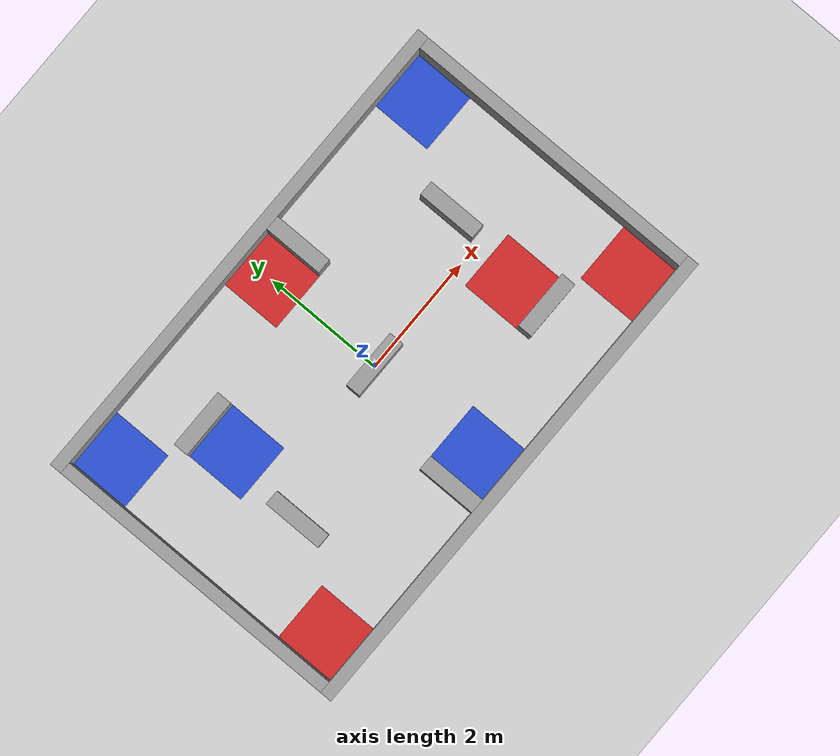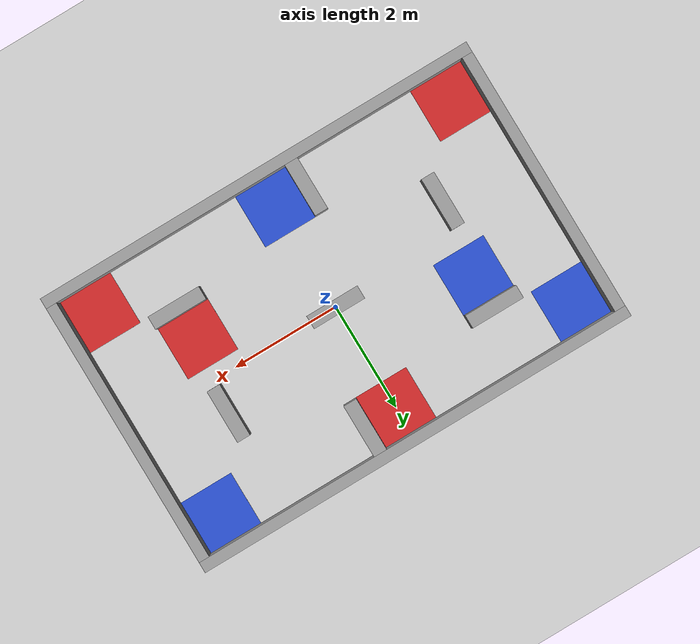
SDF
<sdf version="1.6">
 <world name="default">
  <model name="roborts_Red_0_bullet_1">
   <static>0</static>
   <link name="link">
    <inertial>
     <mass>0.25</mass>
     <inertia>
      <ixx>9e-05</ixx>
      <ixy>0.000000</ixy>
      <ixz>0.000000</ixz>
      <iyy>9e-05</iyy>
      <iyz>0.000000</iyz>
      <izz>9e-05</izz>
     </inertia>
    </inertial>
    <collision name="collision">
     <geometry><sphere><radius>0.02</radius></sphere></geometry>
     <surface>
      <friction><ode><mu>30.0</mu><mu2>30.0</mu2></ode></friction>
      <contact>
       <ode><kp>1000000.0</kp><kd>100.0</kd><max_vel>1.0</max_vel><min_depth>0.002</min_depth></ode>
      </contact>
     </surface>
    </collision>
    <visual name="visual">
     <geometry><sphere><radius>0.02</radius></sphere></geometry>
     <material>
      <script><uri>file://media/materials/scripts/gazebo.material</uri><name>Gazebo/Blue</name></script>
     </material>
    </visual>
    <velocity_decay><linear>0.000000</linear><angular>0.000000</angular></velocity_decay>
   </link>
  </model>
  <model name="roborts_Red_0_bullet_2">
   <static>0</static>
   <link name="link">
    <inertial>
     <mass>0.25</mass>
     <inertia>
      <ixx>9e-05</ixx>
      <ixy>0.000000</ixy>
      <ixz>0.000000</ixz>
      <iyy>9e-05</iyy>
      <iyz>0.000000</iyz>
      <izz>9e-05</izz>
     </inertia>
    </inertial>
    <collision name="collision">
     <geometry><sphere><radius>0.03</radius></sphere></geometry>
     <surface>
      <friction><ode><mu>30.0</mu><mu2>30.0</mu2></ode></friction>
      <contact>
       <ode><kp>1000000.0</kp><kd>100.0</kd><max_vel>1.0</max_vel><min_depth>0.002</min_depth></ode>
      </contact>
     </surface>
    </collision>
    <visual name="visual">
     <geometry><sphere><radius>0.03</radius></sphere></geometry>
     <material>
      <script><uri>file://media/materials/scripts/gazebo.material</uri><name>Gazebo/Blue</name></script>
     </material>
    </visual>
    <velocity_decay><linear>0.000000</linear><angular>0.000000</angular></velocity_decay>
   </link>
  </model>
  <model name="roborts_Red_1_bullet_1">
   <static>0</static>
   <link name="link">
    <inertial>
     <mass>0.25</mass>
     <inertia>
      <ixx>9e-05</ixx>
      <ixy>0.000000</ixy>
      <ixz>0.000000</ixz>
      <iyy>9e-05</iyy>
      <iyz>0.000000</iyz>
      <izz>9e-05</izz>
     </inertia>
    </inertial>
    <collision name="collision">
     <geometry><sphere><radius>0.02</radius></sphere></geometry>
     <surface>
      <friction><ode><mu>30.0</mu><mu2>30.0</mu2></ode></friction>
      <contact>
       <ode><kp>1000000.0</kp><kd>100.0</kd><max_vel>1.0</max_vel><min_depth>0.002</min_depth></ode>
      </contact>
     </surface>
    </collision>
    <visual name="visual">
     <geometry><sphere><radius>0.02</radius></sphere></geometry>
     <material>
      <script><uri>file://media/materials/scripts/gazebo.material</uri><name>Gazebo/Blue</name></script>
     </material>
    </visual>
    <velocity_decay><linear>0.000000</linear><angular>0.000000</angular></velocity_decay>
   </link>
  </model>
  <model name="roborts_Red_1_bullet_2">
   <static>0</static>
   <link name="link">
    <inertial>
     <mass>0.25</mass>
     <inertia>
      <ixx>9e-05</ixx>
      <ixy>0.000000</ixy>
      <ixz>0.000000</ixz>
      <iyy>9e-05</iyy>
      <iyz>0.000000</iyz>
      <izz>9e-05</izz>
     </inertia>
    </inertial>
    <collision name="collision">
     <geometry><sphere><radius>0.03</radius></sphere></geometry>
     <surface>
      <friction><ode><mu>30.0</mu><mu2>30.0</mu2></ode></friction>
      <contact>
       <ode><kp>1000000.0</kp><kd>100.0</kd><max_vel>1.0</max_vel><min_depth>0.002</min_depth></ode>
      </contact>
     </surface>
    </collision>
    <visual name="visual">
     <geometry><sphere><radius>0.03</radius></sphere></geometry>
     <material>
      <script><uri>file://media/materials/scripts/gazebo.material</uri><name>Gazebo/Blue</name></script>
     </material>
    </visual>
    <velocity_decay><linear>0.000000</linear><angular>0.000000</angular></velocity_decay>
   </link>
  </model>
  <model name="roborts_Blue_0_bullet_1">
   <static>0</static>
   <link name="link">
    <inertial>
     <mass>0.25</mass>
     <inertia>
      <ixx>9e-05</ixx>
      <ixy>0.000000</ixy>
      <ixz>0.000000</ixz>
      <iyy>9e-05</iyy>
      <iyz>0.000000</iyz>
      <izz>9e-05</izz>
     </inertia>
    </inertial>
    <collision name="collision">
     <geometry><sphere><radius>0.02</radius></sphere></geometry>
     <surface>
      <friction><ode><mu>30.0</mu><mu2>30.0</mu2></ode></friction>
      <contact>
       <ode><kp>1000000.0</kp><kd>100.0</kd><max_vel>1.0</max_vel><min_depth>0.002</min_depth></ode>
      </contact>
     </surface>
    </collision>
    <visual name="visual">
     <geometry><sphere><radius>0.02</radius></sphere></geometry>
     <material>
      <script><uri>file://media/materials/scripts/gazebo.material</uri><name>Gazebo/Blue</name></script>
     </material>
    </visual>
    <velocity_decay><linear>0.000000</linear><angular>0.000000</angular></velocity_decay>
   </link>
  </model>
  <model name="roborts_Blue_0_bullet_2">
   <static>0</static>
   <link name="link">
    <inertial>
     <mass>0.25</mass>
     <inertia>
      <ixx>9e-05</ixx>
      <ixy>0.000000</ixy>
      <ixz>0.000000</ixz>
      <iyy>9e-05</iyy>
      <iyz>0.000000</iyz>
      <izz>9e-05</izz>
     </inertia>
    </inertial>
    <collision name="collision">
     <geometry><sphere><radius>0.03</radius></sphere></geometry>
     <surface>
      <friction><ode><mu>30.0</mu><mu2>30.0</mu2></ode></friction>
      <contact>
       <ode><kp>1000000.0</kp><kd>100.0</kd><max_vel>1.0</max_vel><min_depth>0.002</min_depth></ode>
      </contact>
     </surface>
    </collision>
    <visual name="visual">
     <geometry><sphere><radius>0.03</radius></sphere></geometry>
     <material>
      <script><uri>file://media/materials/scripts/gazebo.material</uri><name>Gazebo/Blue</name></script>
     </material>
    </visual>
    <velocity_decay><linear>0.000000</linear><angular>0.000000</angular></velocity_decay>
   </link>
  </model>
  <model name="roborts_Blue_1_bullet_1">
   <static>0</static>
   <link name="link">
    <inertial>
     <mass>0.25</mass>
     <inertia>
      <ixx>9e-05</ixx>
      <ixy>0.000000</ixy>
      <ixz>0.000000</ixz>
      <iyy>9e-05</iyy>
      <iyz>0.000000</iyz>
      <izz>9e-05</izz>
     </inertia>
    </inertial>
    <collision name="collision">
     <geometry><sphere><radius>0.02</radius></sphere></geometry>
     <surface>
      <friction><ode><mu>30.0</mu><mu2>30.0</mu2></ode></friction>
      <contact>
       <ode><kp>1000000.0</kp><kd>100.0</kd><max_vel>1.0</max_vel><min_depth>0.002</min_depth></ode>
      </contact>
     </surface>
    </collision>
    <visual name="visual">
     <geometry><sphere><radius>0.02</radius></sphere></geometry>
     <material>
      <script><uri>file://media/materials/scripts/gazebo.material</uri><name>Gazebo/Blue</name></script>
     </material>
    </visual>
    <velocity_decay><linear>0.000000</linear><angular>0.000000</angular></velocity_decay>
   </link>
  </model>
  <model name="roborts_Blue_1_bullet_2">
   <static>0</static>
   <link name="link">
    <inertial>
     <mass>0.25</mass>
     <inertia>
      <ixx>9e-05</ixx>
      <ixy>0.000000</ixy>
      <ixz>0.000000</ixz>
      <iyy>9e-05</iyy>
      <iyz>0.000000</iyz>
      <izz>9e-05</izz>
     </inertia>
    </inertial>
    <collision name="collision">
     <geometry><sphere><radius>0.03</radius></sphere></geometry>
     <surface>
      <friction><ode><mu>30.0</mu><mu2>30.0</mu2></ode></friction>
      <contact>
       <ode><kp>1000000.0</kp><kd>100.0</kd><max_vel>1.0</max_vel><min_depth>0.002</min_depth></ode>
      </contact>
     </surface>
    </collision>
    <visual name="visual">
     <geometry><sphere><radius>0.03</radius></sphere></geometry>
     <material>
      <script><uri>file://media/materials/scripts/gazebo.material</uri><name>Gazebo/Blue</name></script>
     </material>
    </visual>
    <velocity_decay><linear>0.000000</linear><angular>0.000000</angular></velocity_decay>
   </link>
  </model>
  <model name="ground_plane">
   <static>1</static>
   <link name="link">
    <collision name="collision">
     <geometry><plane><normal>0 0 1</normal><size>100 100</size></plane></geometry>
     <surface><friction><ode><mu>100</mu><mu2>50</mu2></ode></friction></surface>
    </collision>
    <visual name="visual">
     <cast_shadows>0</cast_shadows>
     <geometry><plane><normal>0 0 1</normal><size>100 100</size></plane></geometry>
     <material>
      <script><uri>file://media/materials/scripts/gazebo.material</uri><name>Gazebo/Grey</name></script>
     </material>
    </visual>
   </link>
  </model>
  <model name="game_stage">
   <link name="bottom_wall">
    <collision name="bottom_wall_Collision">
     <geometry><box><size>8.4 0.2 1</size></box></geometry>
     <pose>0 0 0.5 0 -0 0</pose>
    </collision>
    <visual name="bottom_wall_Visual">
     <pose>0 0 0.5 0 -0 0</pose>
     <geometry><box><size>8.4 0.2 1</size></box></geometry>
     <material>
      <script><uri>file://media/materials/scripts/gazebo.material</uri><name>Gazebo/Grey</name></script>
      <ambient>1 1 1 1</ambient>
     </material>
     <meta><layer>0</layer></meta>
    </visual>
    <pose>0 -2.6 0 0 -0 0</pose>
   </link>
   <link name="right_wall">
    <collision name="right_wall_Collision">
     <geometry><box><size>5 0.2 1</size></box></geometry>
     <pose>0 0 0.5 0 -0 0</pose>
    </collision>
    <visual name="right_wall_Visual">
     <pose>0 0 0.5 0 -0 0</pose>
     <geometry><box><size>5 0.2 1</size></box></geometry>
     <material>
      <script><uri>file://media/materials/scripts/gazebo.material</uri><name>Gazebo/Grey</name></script>
      <ambient>1 1 1 1</ambient>
     </material>
     <meta><layer>0</layer></meta>
    </visual>
    <pose>4.1 0 0 0 -0 1.5708</pose>
   </link>
   <link name="top_wall">
    <collision name="top_wall_Collision">
     <geometry><box><size>8.4 0.2 1</size></box></geometry>
     <pose>0 0 0.5 0 -0 0</pose>
    </collision>
    <visual name="top_wall_Visual">
     <pose>0 0 0.5 0 -0 0</pose>
     <geometry><box><size>8.4 0.2 1</size></box></geometry>
     <material>
      <script><uri>file://media/materials/scripts/gazebo.material</uri><name>Gazebo/Grey</name></script>
      <ambient>1 1 1 1</ambient>
     </material>
     <meta><layer>0</layer></meta>
    </visual>
    <pose>0 2.6 0 0 0 0</pose>
   </link>
   <link name="left_wall">
    <collision name="left_wall_Collision">
     <geometry><box><size>5 0.2 1</size></box></geometry>
     <pose>0 0 0.5 0 -0 0</pose>
    </collision>
    <visual name="left_wall_Visual">
     <pose>0 0 0.5 0 -0 0</pose>
     <geometry><box><size>5 0.2 1</size></box></geometry>
     <material>
      <script><uri>file://media/materials/scripts/gazebo.material</uri><name>Gazebo/Grey</name></script>
      <ambient>1 1 1 1</ambient>
     </material>
     <meta><layer>0</layer></meta>
    </visual>
    <pose>-4.1 0 0 0 -0 -1.5708</pose>
   </link>
   <link name="right_vertical_barrier">
    <collision name="right_vertical_barrier_Collision">
     <geometry><box><size>1 0.25 1</size></box></geometry>
     <pose>0 0 0.5 0 -0 0</pose>
    </collision>
    <visual name="right_vertical_barrier_Visual">
     <pose>0 0 0.5 0 -0 0</pose>
     <geometry><box><size>1 0.25 1</size></box></geometry>
     <material>
      <script><uri>file://media/materials/scripts/gazebo.material</uri><name>Gazebo/Grey</name></script>
      <ambient>1 1 1 1</ambient>
     </material>
     <meta><layer>0</layer></meta>
    </visual>
    <pose>2.475 0.600 0 -0 0 1.5708</pose>
   </link>
   <link name="left_vertical_barrier">
    <collision name="left_vertical_barrier_Collision">
     <geometry><box><size>1 0.25 1</size></box></geometry>
     <pose>0 0 0.5 0 -0 0</pose>
    </collision>
    <visual name="left_vertical_barrier_Visual">
     <pose>0 0 0.5 0 -0 0</pose>
     <geometry><box><size>1 0.25 1</size></box></geometry>
     <material>
      <script><uri>file://media/materials/scripts/gazebo.material</uri><name>Gazebo/Grey</name></script>
      <ambient>1 1 1 1</ambient>
     </material>
     <meta><layer>0</layer></meta>
    </visual>
    <pose>-2.475 -0.600 0 0 -0 1.5708</pose>
   </link>
   <link name="right_defense_zone_barrier">
    <collision name="right_defense_zone_barrier_Collision">
     <geometry><box><size>1 0.25 1</size></box></geometry>
     <pose>0 0 0.5 0 -0 0</pose>
    </collision>
    <visual name="right_defense_zone_barrier_Visual">
     <pose>0 0 0.5 0 -0 0</pose>
     <geometry><box><size>1 0.25 1</size></box></geometry>
     <material>
      <script><uri>file://media/materials/scripts/gazebo.material</uri><name>Gazebo/Grey</name></script>
      <ambient>1 1 1 1</ambient>
     </material>
     <meta><layer>0</layer></meta>
    </visual>
    <pose>2.300 -1.375 0 0 -0 0</pose>
   </link>
   <link name="left_defense_zone_barrier">
    <collision name="left_defense_zone_barrier_Collision">
     <geometry><box><size>1 0.25 1</size></box></geometry>
     <pose>0 0 0.5 0 -0 0</pose>
    </collision>
    <visual name="left_defense_zone_barrier_Visual">
     <pose>0 0 0.5 0 -0 0</pose>
     <geometry><box><size>1 0.25 1</size></box></geometry>
     <material>
      <script><uri>file://media/materials/scripts/gazebo.material</uri><name>Gazebo/Grey</name></script>
      <ambient>1 1 1 1</ambient>
     </material>
     <meta><layer>0</layer></meta>
    </visual>
    <pose>-2.300 +1.375 0 0 -0 0</pose>
   </link>
   <link name="middle_wall">
    <collision name="middle_wall_Collision">
     <geometry><box><size>1 0.25 1</size></box></geometry>
     <pose>0 0 0.5 0 -0 0</pose>
    </collision>
    <visual name="middle_wall_Visual">
     <pose>0 0 0.5 0 -0 0</pose>
     <geometry><box><size>1 0.25 1</size></box></geometry>
     <material>
      <script><uri>file://media/materials/scripts/gazebo.material</uri><name>Gazebo/Grey</name></script>
      <ambient>1 1 1 1</ambient>
     </material>
     <meta><layer>0</layer></meta>
    </visual>
   </link>
   <link name="top_ammo_zone_wall">
    <collision name="top_ammo_zone_wall_Collision">
     <geometry><box><size>1 0.25 1</size></box></geometry>
     <pose>0 0 0.5 0 -0 0</pose>
    </collision>
    <visual name="top_ammo_zone_wall_Visual">
     <pose>0 0 0.5 0 -0 0</pose>
     <geometry><box><size>1 0.25 1</size></box></geometry>
     <material>
      <script><uri>file://media/materials/scripts/gazebo.material</uri><name>Gazebo/Grey</name></script>
      <ambient>1 1 1 1</ambient>
     </material>
     <meta><layer>0</layer></meta>
    </visual>
    <pose>0.625 2.000 0 0 -0 -1.5708</pose>
   </link>
   <link name="bottom_ammo_zone_wall">
    <collision name="bottom_ammo_zone_wall_Collision">
     <geometry><box><size>1 0.25 1</size></box></geometry>
     <pose>0 0 0.5 0 -0 0</pose>
    </collision>
    <visual name="bottom_ammo_zone_wall_Visual">
     <pose>0 0 0.5 0 -0 0</pose>
     <geometry><box><size>1 0.25 1</size></box></geometry>
     <material>
      <script><uri>file://media/materials/scripts/gazebo.material</uri><name>Gazebo/Grey</name></script>
      <ambient>1 1 1 1</ambient>
     </material>
     <meta><layer>0</layer></meta>
    </visual>
    <pose>-0.625 -2.000 0 0 -0 -1.5708</pose>
   </link>
   <link name="start_zone_blue1">
    <visual name="start_zone_blue1_visual">
     <cast_shadows>0</cast_shadows>
     <geometry><plane><normal>0 0 1</normal><size>1 1</size></plane></geometry>
     <material>
      <script><uri>file://media/materials/scripts/gazebo.material</uri><name>Gazebo/Blue</name></script>
     </material>
    </visual>
    <pose>-3.5 2 0.001 0 -0 0</pose>
   </link>
   <link name="start_zone_blue2">
    <visual name="start_zone_blue2_visual">
     <cast_shadows>0</cast_shadows>
     <geometry><plane><normal>0 0 1</normal><size>1 1</size></plane></geometry>
     <material>
      <script><uri>file://media/materials/scripts/gazebo.material</uri><name>Gazebo/Blue</name></script>
     </material>
    </visual>
    <pose>3.5 2 0.001 0 -0 0</pose>
   </link>
   <link name="start_zone_red1">
    <visual name="start_zone_red1_visual">
     <cast_shadows>0</cast_shadows>
     <geometry><plane><normal>0 0 1</normal><size>1 1</size></plane></geometry>
     <material>
      <script><uri>file://media/materials/scripts/gazebo.material</uri><name>Gazebo/Red</name></script>
     </material>
    </visual>
    <pose>-3.5 -2 0.001 0 -0 0</pose>
   </link>
   <link name="start_zone_red2">
    <visual name="start_zone_red2_visual">
     <cast_shadows>0</cast_shadows>
     <geometry><plane><normal>0 0 1</normal><size>1 1</size></plane></geometry>
     <material>
      <script><uri>file://media/materials/scripts/gazebo.material</uri><name>Gazebo/Red</name></script>
     </material>
    </visual>
    <pose>3.5 -2 0.001 0 -0 0</pose>
   </link>
   <link name="reload_zone_red">
    <visual name="reload_zone_red_visual">
     <cast_shadows>0</cast_shadows>
     <geometry><plane><normal>0 0 1</normal><size>1 1</size></plane></geometry>
     <material>
      <script><uri>file://media/materials/scripts/gazebo.material</uri><name>Gazebo/Red</name></script>
     </material>
    </visual>
    <pose>0 2 0.001 0 -0 0</pose>
   </link>
   <link name="reload_zone_blue">
    <visual name="reload_zone_blue_visual">
     <cast_shadows>0</cast_shadows>
     <geometry><plane><normal>0 0 1</normal><size>1 1</size></plane></geometry>
     <material>
      <script><uri>file://media/materials/scripts/gazebo.material</uri><name>Gazebo/Blue</name></script>
     </material>
    </visual>
    <pose>0 -2 0.001 0 -0 0</pose>
   </link>
   <link name="defense_zone_blue">
    <visual name="defense_zone_blue_visual">
     <cast_shadows>0</cast_shadows>
     <geometry><plane><normal>0 0 1</normal><size>1 1</size></plane></geometry>
     <material>
      <script><uri>file://media/materials/scripts/gazebo.material</uri><name>Gazebo/Blue</name></script>
     </material>
    </visual>
    <pose>-2.3 0.75 0.001 0 -0 0</pose>
   </link>
   <link name="defense_zone_red">
    <visual name="defense_zone_red_visual">
     <cast_shadows>0</cast_shadows>
     <geometry><plane><normal>0 0 1</normal><size>1 1</size></plane></geometry>
     <material>
      <script><uri>file://media/materials/scripts/gazebo.material</uri><name>Gazebo/Red</name></script>
     </material>
    </visual>
    <pose>2.3 -0.75 0.001 0 -0 0</pose>
   </link>
   <static>1</static>
  </model>
 </world>
</sdf>
